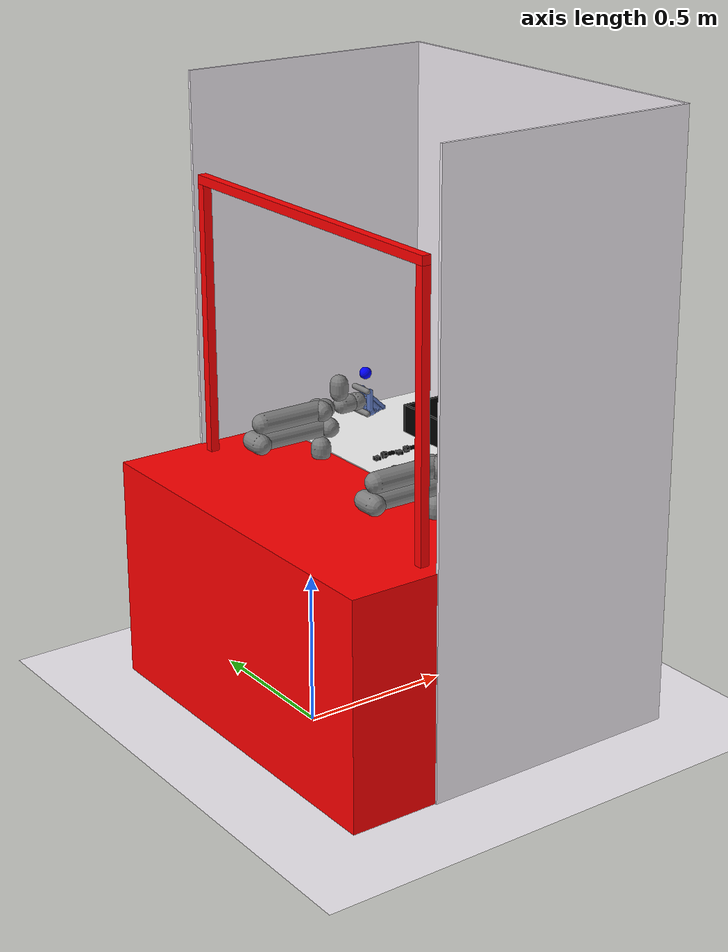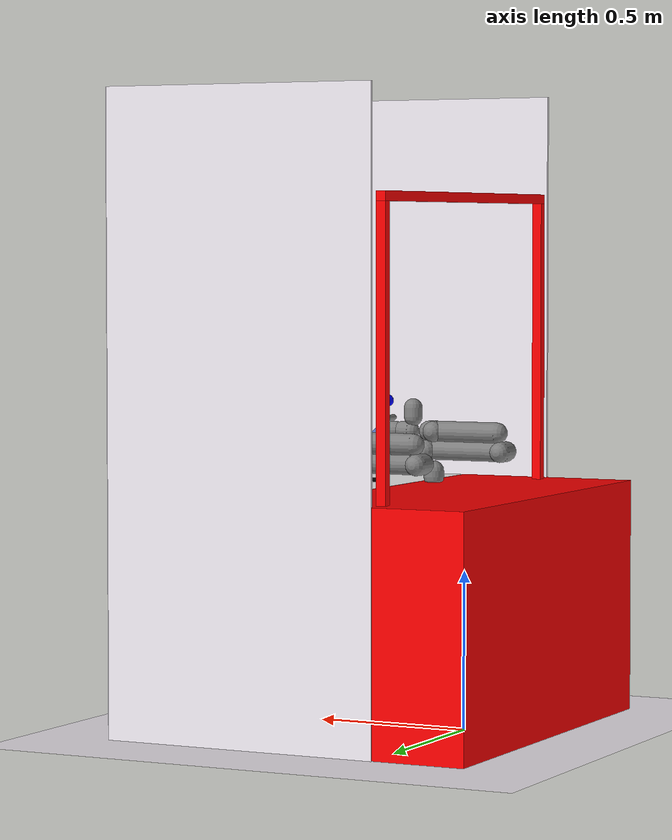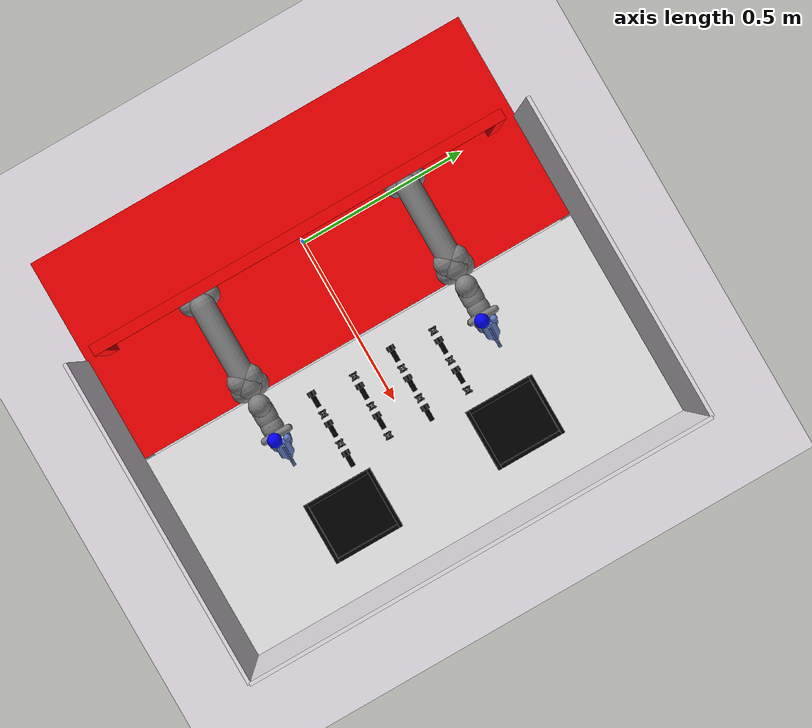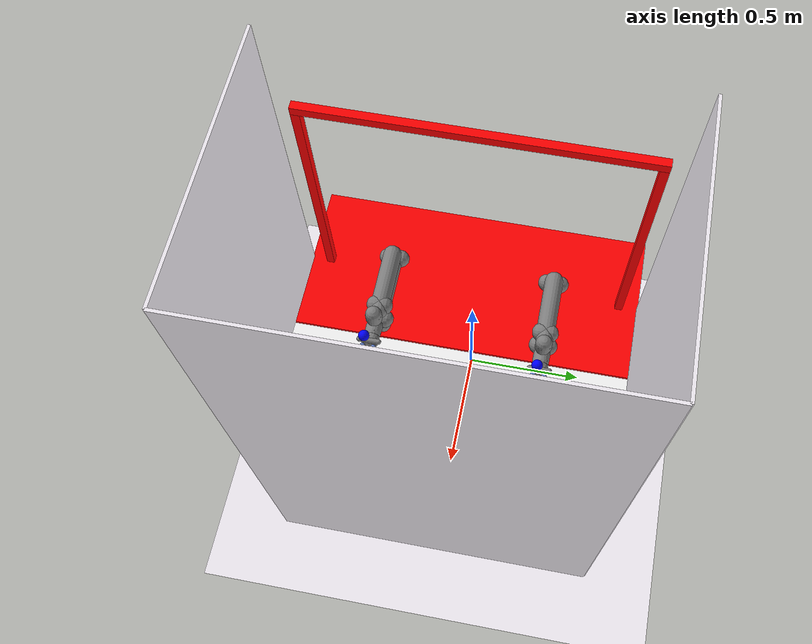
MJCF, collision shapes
<mujoco model="yam_nuts_bolts_sorting">
  <compiler angle="radian" meshdir="assets" boundmass="0.001" boundinertia="0.000001"/>

  <option integrator="implicitfast"/>

  <visual>
    <global azimuth="120" elevation="-20" offwidth="1920" offheight="1080"/>
    <quality shadowsize="8192" offsamples="16"/>
    <headlight ambient="0.40 0.40 0.40" diffuse="0.0 0.0 0.0" specular="0 0 0"/>
    <rgba haze="1.0 1.0 1.0 1"/>
  </visual>

  <default>
    <default class="yam">
      <position inheritrange="1"/>
      <joint frictionloss="0.1" axis="0 0 1"/>
      <default class="dm4340">
        <joint armature="0.032"/>
        <position kp="40" kv="2.5" forcerange="-28 28"/>
      </default>
      <default class="dm4310">
        <joint armature="0.0018"/>
        <position kp="10" kv="1" forcerange="-10 10"/>
      </default>
      <default class="visual">
        <geom type="mesh" contype="0" conaffinity="0" density="0" group="2" material="black"/>
      </default>
      <default class="collision">
        <geom group="3" type="capsule" friction="2.0 0.1 0.01" condim="6"/>
        <default class="sphere_collision">
          <geom size="0.0006 0 0" type="sphere" rgba="1 0 0 1" friction="4.0 0.1 0.01" condim="6" solimp="0.998 0.998 0.001" solref="0.004 1"/>
        </default>
      </default>
      <default class="finger">
        <joint type="slide" armature="0.1" frictionloss="0.1"/>
        <position ctrlrange="0.0 0.0495" kp="400" kv="14" inheritrange="0"/>
      </default>
    </default>
    <default class="sort_part">
      <joint type="free" damping="0.0015"/>
      <geom density="2500" condim="6" friction="1.15 0.02 0.002" solimp="0.995 0.998 0.001" solref="0.008 1"/>
      <default class="nut_collision">
        <geom friction="0.65 0.012 0.0012"/>
      </default>
      <default class="bolt_collision">
        <geom friction="1.35 0.025 0.0025"/>
      </default>
    </default>
  </default>

  <asset>
    <material name="black" rgba="0.30 0.30 0.30 1"/>
    <material name="white" rgba="0.9 0.9 0.9 1"/>
    <material name="nuts_bin_material" rgba="0.04 0.45 0.48 1" specular="0.18" shininess="0.22"/>
    <material name="bolts_bin_material" rgba="0.84 0.37 0.08 1" specular="0.18" shininess="0.22"/>
    <material name="sorting_bin_floor" rgba="0.18 0.19 0.20 1" specular="0.10" shininess="0.16"/>
    <material name="nut_steel" rgba="0.72 0.72 0.68 1" specular="0.55" shininess="0.35"/>
    <material name="bolt_steel" rgba="0.38 0.42 0.48 1" specular="0.48" shininess="0.32"/>
    <material name="bolt_head" rgba="0.25 0.28 0.32 1" specular="0.45" shininess="0.28"/>

    <mesh file="i2rt_yam/assets/model2.stl"/>
    <mesh file="i2rt_yam/assets/model2__2.stl"/>
    <mesh file="i2rt_yam/assets/model2__3.stl"/>
    <mesh file="i2rt_yam/assets/model2__4.stl"/>
    <mesh file="i2rt_yam/assets/model2__5.stl"/>
    <mesh file="i2rt_yam/assets/model2__6.stl"/>
    <mesh file="i2rt_yam/assets/model2__7.stl"/>
    <mesh file="i2rt_yam/assets/model2__8.stl"/>
    <mesh file="i2rt_yam/assets/model2__9.stl"/>
    <mesh file="i2rt_yam/assets/model2__10.stl"/>
    <mesh file="i2rt_yam/assets/model2__11.stl"/>
    <mesh file="i2rt_yam/assets/model2__12.stl"/>
    <mesh file="i2rt_yam/assets/model2__13.stl"/>
    <mesh file="i2rt_yam/assets/model2__14.stl"/>
    <mesh file="i2rt_yam/assets/model2__15.stl"/>
    <mesh file="i2rt_yam/assets/model2__16.stl"/>
    <mesh file="i2rt_yam/assets/model2__17.stl"/>
    <mesh name="base_visual_gate" file="i2rt_yam/assets/base_visual_gate.stl"/>
    <mesh name="camera_d405" file="i2rt_yam/assets/d405.stl"/>
    <mesh name="m20_nut_watertight" file="task_nuts_bolts/m20_nut_watertight.obj" scale="0.72 0.72 0.72"/>
    <mesh name="m20_bolt_watertight" file="task_nuts_bolts/m20_bolt_watertight.obj" scale="0.72 0.72 0.72"/>
    <mesh name="stackable_bin_visual" file="task_bins/stackable_box.obj" scale="0.170 0.195 0.095"/>
    <mesh name="low_poly_crate_bin_visual" file="task_bins/low_poly_plastic_crate.obj" scale="0.170 0.195 0.095"/>

    <texture type="skybox" builtin="gradient" rgb1="1.0 1.0 1.0" rgb2="0.98 0.98 0.98" width="512" height="3072"/>
    <texture type="2d" name="groundplane" builtin="checker" mark="edge"
      rgb1="0.55 0.55 0.55" rgb2="0.50 0.50 0.50" markrgb="0.6 0.6 0.6" width="300" height="300"/>
    <material name="groundplane" texture="groundplane" texuniform="true" texrepeat="5 5" reflectance="0.2"/>
  </asset>

  <worldbody>
    <!-- Lighting -->
    <light pos="0 0 1.5" dir="0 0 -1" directional="true"
      diffuse="0.30 0.30 0.30" specular="0.05 0.05 0.05"/>

    <!-- Floor -->
    <geom name="floor" size="0 0 0.05" type="plane" contype="0" conaffinity="0" rgba="0.95 0.93 0.96 1"/>
    <geom name="floor_collision" size="0 0 0.05" type="plane" group="3" rgba="0 0 0 0"/>

    <!-- Gate/station structure (visual) -->
    <geom type="mesh" contype="0" conaffinity="0" group="2" density="0" rgba="0.85 0.85 0.85 1" mesh="base_visual_gate"/>
    <geom size="0.2975 0.65 0.375" pos="0 0 0.375" type="box" group="3" rgba="1 0 0 0.0"/>

    <!-- Gate collision bodies + top camera -->
    <body name="gate_collision" pos="0 0 0.75">
      <geom size="0.015 0.015 0.45" pos="0 0.575 0.45" type="box" group="3" rgba="1 0 0 0.0"/>
      <geom size="0.015 0.015 0.45" pos="0 -0.575 0.45" type="box" group="3" rgba="1 0 0 0.0"/>
      <geom size="0.015 0.015 0.59" pos="0 0 0.915" quat="0.707107 0.707107 0 0" type="box" group="3" rgba="1 0 0 0.0"/>
      <body name="top_bar_center" pos="0 0 0.915">
        <body name="top_camera_d405" pos="0.08600512 -0.009 0.03932053" quat="0.183012 0.683013 0.683013 0.183012">
          <geom type="mesh" contype="0" conaffinity="0" group="2" density="0.001" mass="0.001"
            rgba="0 0 0 0" mesh="camera_d405"/>
          <body name="top_camera_frame" pos="0.009 0 0" quat="0 0 0 1">
            <camera name="top" pos="0 0 0" quat="0 1 0 0" fovy="58"/>
          </body>
        </body>
      </body>
    </body>

    <!-- Enclosure walls ( matching real white-walled workspace) -->
    <!-- Back wall: behind the table, spanning full Y width -->
    <geom name="back_wall" type="box" size="0.005 0.65 1.0" pos="0.9 0 1.0" group="2" contype="0" conaffinity="0" rgba="0.95 0.93 0.96 1"/>
    <geom name="back_wall_collision" type="box" size="0.005 0.65 1.0" pos="0.9 0 1.0" group="3" rgba="0 0 0 0"/>
    <!-- Left wall: at positive Y, from gate to back wall -->
    <geom name="left_wall" type="box" size="0.45 0.005 1.0" pos="0.45 0.65 1.0" group="2" contype="0" conaffinity="0" rgba="0.95 0.93 0.96 1"/>
    <geom name="left_wall_collision" type="box" size="0.45 0.005 1.0" pos="0.45 0.65 1.0" group="3" rgba="0 0 0 0"/>
    <!-- Right wall: at negative Y, from gate to back wall -->
    <geom name="right_wall" type="box" size="0.45 0.005 1.0" pos="0.45 -0.65 1.0" group="2" contype="0" conaffinity="0" rgba="0.95 0.93 0.96 1"/>
    <geom name="right_wall_collision" type="box" size="0.45 0.005 1.0" pos="0.45 -0.65 1.0" group="3" rgba="0 0 0 0"/>

    <!-- Play table (visual only + collision plane at surface) -->

    <!-- Side cameras on cage walls -->

    <!-- Overhead camera -->
    <body name="overhead_camera" pos="0.55 0.0 1.6">
      <camera name="overhead" pos="0 0 0" quat="0.707 0 0 -0.707" fovy="60"/>
    </body>

    <body name="left_side_camera" pos="0.5 0.55 1.05" euler="-1.3 0 3.14159">
      <camera name="left_side" pos="0 0 0" fovy="70"/>
    </body>
    <body name="right_side_camera" pos="0.5 -0.55 1.05" euler="1.3 0 0">
      <camera name="right_side" pos="0 0 0" fovy="70"/>
    </body>

    <body name="play_table">
      <geom size="0.2975 0.65 0.005" pos="0.6 0 0.745" type="box" group="2" contype="0" conaffinity="0" rgba="0.97 0.97 0.97 1"/>
    </body>
    <geom name="table_plane" type="plane" size="0.2975 0.65 0.01" pos="0.6 0 0.75" rgba="0 0 0 0" group="3"/>

    <!-- ==================== NUTS-AND-BOLTS SORTING TASK ==================== -->
    <body name="nuts_sorting_bin" pos="0.70 0.245 0.75">
      <inertial pos="0 0 0.044" mass="0.12" diaginertia="0.00055 0.00048 0.00082"/>
      <joint name="nuts_sorting_bin_joint" type="free" damping="0.01"/>
      <geom name="nuts_sorting_bin_visual" type="mesh" mesh="stackable_bin_visual" material="nuts_bin_material" group="2" contype="0" conaffinity="0" density="0"/>
      <geom name="nuts_bin_floor" type="box" size="0.082 0.095 0.006" pos="0 0 0.006" group="3" rgba="0 0 0 0" friction="1.4 0.1 0.01"/>
      <geom name="nuts_bin_back_wall" type="box" size="0.005 0.090 0.048" pos="0.082 0 0.048" group="3" rgba="0 0 0 0" friction="1.2 0.1 0.01"/>
      <geom name="nuts_bin_front_wall" type="box" size="0.005 0.090 0.048" pos="-0.082 0 0.048" group="3" rgba="0 0 0 0" friction="1.2 0.1 0.01"/>
      <geom name="nuts_bin_left_wall" type="box" size="0.087 0.005 0.048" pos="0 0.095 0.048" group="3" rgba="0 0 0 0" friction="1.2 0.1 0.01"/>
      <geom name="nuts_bin_right_wall" type="box" size="0.087 0.005 0.048" pos="0 -0.095 0.048" group="3" rgba="0 0 0 0" friction="1.2 0.1 0.01"/>
      <site name="nuts_bin_goal_region" type="box" size="0.068 0.080 0.042" pos="0 0 0.048" rgba="0.0 0.9 1.0 0.18" group="4"/>
    </body>
    <body name="bolts_sorting_bin" pos="0.70 -0.245 0.75">
      <inertial pos="0 0 0.044" mass="0.12" diaginertia="0.00055 0.00048 0.00082"/>
      <joint name="bolts_sorting_bin_joint" type="free" damping="0.01"/>
      <geom name="bolts_sorting_bin_visual" type="mesh" mesh="stackable_bin_visual" material="bolts_bin_material" group="2" contype="0" conaffinity="0" density="0"/>
      <geom name="bolts_bin_floor" type="box" size="0.082 0.095 0.006" pos="0 0 0.006" group="3" rgba="0 0 0 0" friction="1.4 0.1 0.01"/>
      <geom name="bolts_bin_back_wall" type="box" size="0.005 0.090 0.048" pos="0.082 0 0.048" group="3" rgba="0 0 0 0" friction="1.2 0.1 0.01"/>
      <geom name="bolts_bin_front_wall" type="box" size="0.005 0.090 0.048" pos="-0.082 0 0.048" group="3" rgba="0 0 0 0" friction="1.2 0.1 0.01"/>
      <geom name="bolts_bin_left_wall" type="box" size="0.087 0.005 0.048" pos="0 0.095 0.048" group="3" rgba="0 0 0 0" friction="1.2 0.1 0.01"/>
      <geom name="bolts_bin_right_wall" type="box" size="0.087 0.005 0.048" pos="0 -0.095 0.048" group="3" rgba="0 0 0 0" friction="1.2 0.1 0.01"/>
      <site name="bolts_bin_goal_region" type="box" size="0.068 0.080 0.042" pos="0 0 0.048" rgba="1.0 0.55 0.0 0.18" group="4"/>
    </body>

    <!-- NUTS_BOLTS_SORTING_OBJECTS_BEGIN -->
    <body name="nut_1" pos="0.385 0.18 0.75576">
      <inertial pos="0 0 0" mass="0.010" diaginertia="0.00000065 0.00000065 0.0000011"/>
      <joint name="nut_1_joint" class="sort_part"/>
      <geom name="nut_1_visual" type="mesh" mesh="m20_nut_watertight" material="nut_steel" contype="0" conaffinity="0" density="0" group="2"/>
      <geom class="nut_collision" type="box" size="0.0072 0.0027 0.00576" pos="0.00684 0 0" euler="0 0 1.5708" group="3" rgba="0 0 0 0"/>
      <geom class="nut_collision" type="box" size="0.0072 0.0027 0.00576" pos="-0.00684 0 0" euler="0 0 1.5708" group="3" rgba="0 0 0 0"/>
      <geom class="nut_collision" type="box" size="0.0072 0.0027 0.00576" pos="0.00342 0.00594 0" euler="0 0 0.5236" group="3" rgba="0 0 0 0"/>
      <geom class="nut_collision" type="box" size="0.0072 0.0027 0.00576" pos="-0.00342 0.00594 0" euler="0 0 -0.5236" group="3" rgba="0 0 0 0"/>
      <geom class="nut_collision" type="box" size="0.0072 0.0027 0.00576" pos="0.00342 -0.00594 0" euler="0 0 -0.5236" group="3" rgba="0 0 0 0"/>
      <geom class="nut_collision" type="box" size="0.0072 0.0027 0.00576" pos="-0.00342 -0.00594 0" euler="0 0 0.5236" group="3" rgba="0 0 0 0"/>
    </body>
    <body name="nut_2" pos="0.475 0.18 0.75576">
      <inertial pos="0 0 0" mass="0.010" diaginertia="0.00000065 0.00000065 0.0000011"/>
      <joint name="nut_2_joint" class="sort_part"/>
      <geom name="nut_2_visual" type="mesh" mesh="m20_nut_watertight" material="nut_steel" contype="0" conaffinity="0" density="0" group="2"/>
      <geom class="nut_collision" type="box" size="0.0072 0.0027 0.00576" pos="0.00684 0 0" euler="0 0 1.5708" group="3" rgba="0 0 0 0"/>
      <geom class="nut_collision" type="box" size="0.0072 0.0027 0.00576" pos="-0.00684 0 0" euler="0 0 1.5708" group="3" rgba="0 0 0 0"/>
      <geom class="nut_collision" type="box" size="0.0072 0.0027 0.00576" pos="0.00342 0.00594 0" euler="0 0 0.5236" group="3" rgba="0 0 0 0"/>
      <geom class="nut_collision" type="box" size="0.0072 0.0027 0.00576" pos="-0.00342 0.00594 0" euler="0 0 -0.5236" group="3" rgba="0 0 0 0"/>
      <geom class="nut_collision" type="box" size="0.0072 0.0027 0.00576" pos="0.00342 -0.00594 0" euler="0 0 -0.5236" group="3" rgba="0 0 0 0"/>
      <geom class="nut_collision" type="box" size="0.0072 0.0027 0.00576" pos="-0.00342 -0.00594 0" euler="0 0 0.5236" group="3" rgba="0 0 0 0"/>
    </body>
    <body name="nut_3" pos="0.565 0.18 0.75576">
      <inertial pos="0 0 0" mass="0.010" diaginertia="0.00000065 0.00000065 0.0000011"/>
      <joint name="nut_3_joint" class="sort_part"/>
      <geom name="nut_3_visual" type="mesh" mesh="m20_nut_watertight" material="nut_steel" contype="0" conaffinity="0" density="0" group="2"/>
      <geom class="nut_collision" type="box" size="0.0072 0.0027 0.00576" pos="0.00684 0 0" euler="0 0 1.5708" group="3" rgba="0 0 0 0"/>
      <geom class="nut_collision" type="box" size="0.0072 0.0027 0.00576" pos="-0.00684 0 0" euler="0 0 1.5708" group="3" rgba="0 0 0 0"/>
      <geom class="nut_collision" type="box" size="0.0072 0.0027 0.00576" pos="0.00342 0.00594 0" euler="0 0 0.5236" group="3" rgba="0 0 0 0"/>
      <geom class="nut_collision" type="box" size="0.0072 0.0027 0.00576" pos="-0.00342 0.00594 0" euler="0 0 -0.5236" group="3" rgba="0 0 0 0"/>
      <geom class="nut_collision" type="box" size="0.0072 0.0027 0.00576" pos="0.00342 -0.00594 0" euler="0 0 -0.5236" group="3" rgba="0 0 0 0"/>
      <geom class="nut_collision" type="box" size="0.0072 0.0027 0.00576" pos="-0.00342 -0.00594 0" euler="0 0 0.5236" group="3" rgba="0 0 0 0"/>
    </body>
    <body name="nut_4" pos="0.430 0.06 0.75576">
      <inertial pos="0 0 0" mass="0.010" diaginertia="0.00000065 0.00000065 0.0000011"/>
      <joint name="nut_4_joint" class="sort_part"/>
      <geom name="nut_4_visual" type="mesh" mesh="m20_nut_watertight" material="nut_steel" contype="0" conaffinity="0" density="0" group="2"/>
      <geom class="nut_collision" type="box" size="0.0072 0.0027 0.00576" pos="0.00684 0 0" euler="0 0 1.5708" group="3" rgba="0 0 0 0"/>
      <geom class="nut_collision" type="box" size="0.0072 0.0027 0.00576" pos="-0.00684 0 0" euler="0 0 1.5708" group="3" rgba="0 0 0 0"/>
      <geom class="nut_collision" type="box" size="0.0072 0.0027 0.00576" pos="0.00342 0.00594 0" euler="0 0 0.5236" group="3" rgba="0 0 0 0"/>
      <geom class="nut_collision" type="box" size="0.0072 0.0027 0.00576" pos="-0.00342 0.00594 0" euler="0 0 -0.5236" group="3" rgba="0 0 0 0"/>
      <geom class="nut_collision" type="box" size="0.0072 0.0027 0.00576" pos="0.00342 -0.00594 0" euler="0 0 -0.5236" group="3" rgba="0 0 0 0"/>
      <geom class="nut_collision" type="box" size="0.0072 0.0027 0.00576" pos="-0.00342 -0.00594 0" euler="0 0 0.5236" group="3" rgba="0 0 0 0"/>
    </body>
    <body name="nut_5" pos="0.520 0.06 0.75576">
      <inertial pos="0 0 0" mass="0.010" diaginertia="0.00000065 0.00000065 0.0000011"/>
      <joint name="nut_5_joint" class="sort_part"/>
      <geom name="nut_5_visual" type="mesh" mesh="m20_nut_watertight" material="nut_steel" contype="0" conaffinity="0" density="0" group="2"/>
      <geom class="nut_collision" type="box" size="0.0072 0.0027 0.00576" pos="0.00684 0 0" euler="0 0 1.5708" group="3" rgba="0 0 0 0"/>
      <geom class="nut_collision" type="box" size="0.0072 0.0027 0.00576" pos="-0.00684 0 0" euler="0 0 1.5708" group="3" rgba="0 0 0 0"/>
      <geom class="nut_collision" type="box" size="0.0072 0.0027 0.00576" pos="0.00342 0.00594 0" euler="0 0 0.5236" group="3" rgba="0 0 0 0"/>
      <geom class="nut_collision" type="box" size="0.0072 0.0027 0.00576" pos="-0.00342 0.00594 0" euler="0 0 -0.5236" group="3" rgba="0 0 0 0"/>
      <geom class="nut_collision" type="box" size="0.0072 0.0027 0.00576" pos="0.00342 -0.00594 0" euler="0 0 -0.5236" group="3" rgba="0 0 0 0"/>
      <geom class="nut_collision" type="box" size="0.0072 0.0027 0.00576" pos="-0.00342 -0.00594 0" euler="0 0 0.5236" group="3" rgba="0 0 0 0"/>
    </body>
    <body name="nut_6" pos="0.385 -0.06 0.75576">
      <inertial pos="0 0 0" mass="0.010" diaginertia="0.00000065 0.00000065 0.0000011"/>
      <joint name="nut_6_joint" class="sort_part"/>
      <geom name="nut_6_visual" type="mesh" mesh="m20_nut_watertight" material="nut_steel" contype="0" conaffinity="0" density="0" group="2"/>
      <geom class="nut_collision" type="box" size="0.0072 0.0027 0.00576" pos="0.00684 0 0" euler="0 0 1.5708" group="3" rgba="0 0 0 0"/>
      <geom class="nut_collision" type="box" size="0.0072 0.0027 0.00576" pos="-0.00684 0 0" euler="0 0 1.5708" group="3" rgba="0 0 0 0"/>
      <geom class="nut_collision" type="box" size="0.0072 0.0027 0.00576" pos="0.00342 0.00594 0" euler="0 0 0.5236" group="3" rgba="0 0 0 0"/>
      <geom class="nut_collision" type="box" size="0.0072 0.0027 0.00576" pos="-0.00342 0.00594 0" euler="0 0 -0.5236" group="3" rgba="0 0 0 0"/>
      <geom class="nut_collision" type="box" size="0.0072 0.0027 0.00576" pos="0.00342 -0.00594 0" euler="0 0 -0.5236" group="3" rgba="0 0 0 0"/>
      <geom class="nut_collision" type="box" size="0.0072 0.0027 0.00576" pos="-0.00342 -0.00594 0" euler="0 0 0.5236" group="3" rgba="0 0 0 0"/>
    </body>
    <body name="nut_7" pos="0.475 -0.06 0.75576">
      <inertial pos="0 0 0" mass="0.010" diaginertia="0.00000065 0.00000065 0.0000011"/>
      <joint name="nut_7_joint" class="sort_part"/>
      <geom name="nut_7_visual" type="mesh" mesh="m20_nut_watertight" material="nut_steel" contype="0" conaffinity="0" density="0" group="2"/>
      <geom class="nut_collision" type="box" size="0.0072 0.0027 0.00576" pos="0.00684 0 0" euler="0 0 1.5708" group="3" rgba="0 0 0 0"/>
      <geom class="nut_collision" type="box" size="0.0072 0.0027 0.00576" pos="-0.00684 0 0" euler="0 0 1.5708" group="3" rgba="0 0 0 0"/>
      <geom class="nut_collision" type="box" size="0.0072 0.0027 0.00576" pos="0.00342 0.00594 0" euler="0 0 0.5236" group="3" rgba="0 0 0 0"/>
      <geom class="nut_collision" type="box" size="0.0072 0.0027 0.00576" pos="-0.00342 0.00594 0" euler="0 0 -0.5236" group="3" rgba="0 0 0 0"/>
      <geom class="nut_collision" type="box" size="0.0072 0.0027 0.00576" pos="0.00342 -0.00594 0" euler="0 0 -0.5236" group="3" rgba="0 0 0 0"/>
      <geom class="nut_collision" type="box" size="0.0072 0.0027 0.00576" pos="-0.00342 -0.00594 0" euler="0 0 0.5236" group="3" rgba="0 0 0 0"/>
    </body>
    <body name="nut_8" pos="0.565 -0.06 0.75576">
      <inertial pos="0 0 0" mass="0.010" diaginertia="0.00000065 0.00000065 0.0000011"/>
      <joint name="nut_8_joint" class="sort_part"/>
      <geom name="nut_8_visual" type="mesh" mesh="m20_nut_watertight" material="nut_steel" contype="0" conaffinity="0" density="0" group="2"/>
      <geom class="nut_collision" type="box" size="0.0072 0.0027 0.00576" pos="0.00684 0 0" euler="0 0 1.5708" group="3" rgba="0 0 0 0"/>
      <geom class="nut_collision" type="box" size="0.0072 0.0027 0.00576" pos="-0.00684 0 0" euler="0 0 1.5708" group="3" rgba="0 0 0 0"/>
      <geom class="nut_collision" type="box" size="0.0072 0.0027 0.00576" pos="0.00342 0.00594 0" euler="0 0 0.5236" group="3" rgba="0 0 0 0"/>
      <geom class="nut_collision" type="box" size="0.0072 0.0027 0.00576" pos="-0.00342 0.00594 0" euler="0 0 -0.5236" group="3" rgba="0 0 0 0"/>
      <geom class="nut_collision" type="box" size="0.0072 0.0027 0.00576" pos="0.00342 -0.00594 0" euler="0 0 -0.5236" group="3" rgba="0 0 0 0"/>
      <geom class="nut_collision" type="box" size="0.0072 0.0027 0.00576" pos="-0.00342 -0.00594 0" euler="0 0 0.5236" group="3" rgba="0 0 0 0"/>
    </body>
    <body name="nut_9" pos="0.430 -0.18 0.75576">
      <inertial pos="0 0 0" mass="0.010" diaginertia="0.00000065 0.00000065 0.0000011"/>
      <joint name="nut_9_joint" class="sort_part"/>
      <geom name="nut_9_visual" type="mesh" mesh="m20_nut_watertight" material="nut_steel" contype="0" conaffinity="0" density="0" group="2"/>
      <geom class="nut_collision" type="box" size="0.0072 0.0027 0.00576" pos="0.00684 0 0" euler="0 0 1.5708" group="3" rgba="0 0 0 0"/>
      <geom class="nut_collision" type="box" size="0.0072 0.0027 0.00576" pos="-0.00684 0 0" euler="0 0 1.5708" group="3" rgba="0 0 0 0"/>
      <geom class="nut_collision" type="box" size="0.0072 0.0027 0.00576" pos="0.00342 0.00594 0" euler="0 0 0.5236" group="3" rgba="0 0 0 0"/>
      <geom class="nut_collision" type="box" size="0.0072 0.0027 0.00576" pos="-0.00342 0.00594 0" euler="0 0 -0.5236" group="3" rgba="0 0 0 0"/>
      <geom class="nut_collision" type="box" size="0.0072 0.0027 0.00576" pos="0.00342 -0.00594 0" euler="0 0 -0.5236" group="3" rgba="0 0 0 0"/>
      <geom class="nut_collision" type="box" size="0.0072 0.0027 0.00576" pos="-0.00342 -0.00594 0" euler="0 0 0.5236" group="3" rgba="0 0 0 0"/>
    </body>
    <body name="nut_10" pos="0.520 -0.18 0.75576">
      <inertial pos="0 0 0" mass="0.010" diaginertia="0.00000065 0.00000065 0.0000011"/>
      <joint name="nut_10_joint" class="sort_part"/>
      <geom name="nut_10_visual" type="mesh" mesh="m20_nut_watertight" material="nut_steel" contype="0" conaffinity="0" density="0" group="2"/>
      <geom class="nut_collision" type="box" size="0.0072 0.0027 0.00576" pos="0.00684 0 0" euler="0 0 1.5708" group="3" rgba="0 0 0 0"/>
      <geom class="nut_collision" type="box" size="0.0072 0.0027 0.00576" pos="-0.00684 0 0" euler="0 0 1.5708" group="3" rgba="0 0 0 0"/>
      <geom class="nut_collision" type="box" size="0.0072 0.0027 0.00576" pos="0.00342 0.00594 0" euler="0 0 0.5236" group="3" rgba="0 0 0 0"/>
      <geom class="nut_collision" type="box" size="0.0072 0.0027 0.00576" pos="-0.00342 0.00594 0" euler="0 0 -0.5236" group="3" rgba="0 0 0 0"/>
      <geom class="nut_collision" type="box" size="0.0072 0.0027 0.00576" pos="0.00342 -0.00594 0" euler="0 0 -0.5236" group="3" rgba="0 0 0 0"/>
      <geom class="nut_collision" type="box" size="0.0072 0.0027 0.00576" pos="-0.00342 -0.00594 0" euler="0 0 0.5236" group="3" rgba="0 0 0 0"/>
    </body>
    <body name="bolt_1" pos="0.430 0.18 0.7608" quat="0.707107 0 0.707107 0">
      <inertial pos="0 0 -0.0047" mass="0.033" diaginertia="0.0000065 0.0000065 0.0000016"/>
      <joint name="bolt_1_joint" class="sort_part"/>
      <geom name="bolt_1_visual" type="mesh" mesh="m20_bolt_watertight" material="bolt_steel" contype="0" conaffinity="0" density="0" group="2"/>
      <geom class="bolt_collision" type="cylinder" size="0.00684 0.0162" pos="0 0 0.0072" group="3" rgba="0 0 0 0"/>
      <geom class="bolt_collision" type="box" size="0.0108 0.00414 0.0072" pos="0 0 -0.0162" euler="0 0 0" group="3" rgba="0 0 0 0"/>
      <geom class="bolt_collision" type="box" size="0.0108 0.00414 0.0072" pos="0 0 -0.0162" euler="0 0 1.0472" group="3" rgba="0 0 0 0"/>
      <geom class="bolt_collision" type="box" size="0.0108 0.00414 0.0072" pos="0 0 -0.0162" euler="0 0 2.0944" group="3" rgba="0 0 0 0"/>
    </body>
    <body name="bolt_2" pos="0.520 0.18 0.7608" quat="0.707107 0 0.707107 0">
      <inertial pos="0 0 -0.0047" mass="0.033" diaginertia="0.0000065 0.0000065 0.0000016"/>
      <joint name="bolt_2_joint" class="sort_part"/>
      <geom name="bolt_2_visual" type="mesh" mesh="m20_bolt_watertight" material="bolt_steel" contype="0" conaffinity="0" density="0" group="2"/>
      <geom class="bolt_collision" type="cylinder" size="0.00684 0.0162" pos="0 0 0.0072" group="3" rgba="0 0 0 0"/>
      <geom class="bolt_collision" type="box" size="0.0108 0.00414 0.0072" pos="0 0 -0.0162" euler="0 0 0" group="3" rgba="0 0 0 0"/>
      <geom class="bolt_collision" type="box" size="0.0108 0.00414 0.0072" pos="0 0 -0.0162" euler="0 0 1.0472" group="3" rgba="0 0 0 0"/>
      <geom class="bolt_collision" type="box" size="0.0108 0.00414 0.0072" pos="0 0 -0.0162" euler="0 0 2.0944" group="3" rgba="0 0 0 0"/>
    </body>
    <body name="bolt_3" pos="0.385 0.06 0.7608" quat="0.707107 0 0.707107 0">
      <inertial pos="0 0 -0.0047" mass="0.033" diaginertia="0.0000065 0.0000065 0.0000016"/>
      <joint name="bolt_3_joint" class="sort_part"/>
      <geom name="bolt_3_visual" type="mesh" mesh="m20_bolt_watertight" material="bolt_steel" contype="0" conaffinity="0" density="0" group="2"/>
      <geom class="bolt_collision" type="cylinder" size="0.00684 0.0162" pos="0 0 0.0072" group="3" rgba="0 0 0 0"/>
      <geom class="bolt_collision" type="box" size="0.0108 0.00414 0.0072" pos="0 0 -0.0162" euler="0 0 0" group="3" rgba="0 0 0 0"/>
      <geom class="bolt_collision" type="box" size="0.0108 0.00414 0.0072" pos="0 0 -0.0162" euler="0 0 1.0472" group="3" rgba="0 0 0 0"/>
      <geom class="bolt_collision" type="box" size="0.0108 0.00414 0.0072" pos="0 0 -0.0162" euler="0 0 2.0944" group="3" rgba="0 0 0 0"/>
    </body>
    <body name="bolt_4" pos="0.475 0.06 0.7608" quat="0.707107 0 0.707107 0">
      <inertial pos="0 0 -0.0047" mass="0.033" diaginertia="0.0000065 0.0000065 0.0000016"/>
      <joint name="bolt_4_joint" class="sort_part"/>
      <geom name="bolt_4_visual" type="mesh" mesh="m20_bolt_watertight" material="bolt_steel" contype="0" conaffinity="0" density="0" group="2"/>
      <geom class="bolt_collision" type="cylinder" size="0.00684 0.0162" pos="0 0 0.0072" group="3" rgba="0 0 0 0"/>
      <geom class="bolt_collision" type="box" size="0.0108 0.00414 0.0072" pos="0 0 -0.0162" euler="0 0 0" group="3" rgba="0 0 0 0"/>
      <geom class="bolt_collision" type="box" size="0.0108 0.00414 0.0072" pos="0 0 -0.0162" euler="0 0 1.0472" group="3" rgba="0 0 0 0"/>
      <geom class="bolt_collision" type="box" size="0.0108 0.00414 0.0072" pos="0 0 -0.0162" euler="0 0 2.0944" group="3" rgba="0 0 0 0"/>
    </body>
    <body name="bolt_5" pos="0.565 0.06 0.7608" quat="0.707107 0 0.707107 0">
      <inertial pos="0 0 -0.0047" mass="0.033" diaginertia="0.0000065 0.0000065 0.0000016"/>
      <joint name="bolt_5_joint" class="sort_part"/>
      <geom name="bolt_5_visual" type="mesh" mesh="m20_bolt_watertight" material="bolt_steel" contype="0" conaffinity="0" density="0" group="2"/>
      <geom class="bolt_collision" type="cylinder" size="0.00684 0.0162" pos="0 0 0.0072" group="3" rgba="0 0 0 0"/>
      <geom class="bolt_collision" type="box" size="0.0108 0.00414 0.0072" pos="0 0 -0.0162" euler="0 0 0" group="3" rgba="0 0 0 0"/>
      <geom class="bolt_collision" type="box" size="0.0108 0.00414 0.0072" pos="0 0 -0.0162" euler="0 0 1.0472" group="3" rgba="0 0 0 0"/>
      <geom class="bolt_collision" type="box" size="0.0108 0.00414 0.0072" pos="0 0 -0.0162" euler="0 0 2.0944" group="3" rgba="0 0 0 0"/>
    </body>
    <body name="bolt_6" pos="0.430 -0.06 0.7608" quat="0.707107 0 0.707107 0">
      <inertial pos="0 0 -0.0047" mass="0.033" diaginertia="0.0000065 0.0000065 0.0000016"/>
      <joint name="bolt_6_joint" class="sort_part"/>
      <geom name="bolt_6_visual" type="mesh" mesh="m20_bolt_watertight" material="bolt_steel" contype="0" conaffinity="0" density="0" group="2"/>
      <geom class="bolt_collision" type="cylinder" size="0.00684 0.0162" pos="0 0 0.0072" group="3" rgba="0 0 0 0"/>
      <geom class="bolt_collision" type="box" size="0.0108 0.00414 0.0072" pos="0 0 -0.0162" euler="0 0 0" group="3" rgba="0 0 0 0"/>
      <geom class="bolt_collision" type="box" size="0.0108 0.00414 0.0072" pos="0 0 -0.0162" euler="0 0 1.0472" group="3" rgba="0 0 0 0"/>
      <geom class="bolt_collision" type="box" size="0.0108 0.00414 0.0072" pos="0 0 -0.0162" euler="0 0 2.0944" group="3" rgba="0 0 0 0"/>
    </body>
    <body name="bolt_7" pos="0.520 -0.06 0.7608" quat="0.707107 0 0.707107 0">
      <inertial pos="0 0 -0.0047" mass="0.033" diaginertia="0.0000065 0.0000065 0.0000016"/>
      <joint name="bolt_7_joint" class="sort_part"/>
      <geom name="bolt_7_visual" type="mesh" mesh="m20_bolt_watertight" material="bolt_steel" contype="0" conaffinity="0" density="0" group="2"/>
      <geom class="bolt_collision" type="cylinder" size="0.00684 0.0162" pos="0 0 0.0072" group="3" rgba="0 0 0 0"/>
      <geom class="bolt_collision" type="box" size="0.0108 0.00414 0.0072" pos="0 0 -0.0162" euler="0 0 0" group="3" rgba="0 0 0 0"/>
      <geom class="bolt_collision" type="box" size="0.0108 0.00414 0.0072" pos="0 0 -0.0162" euler="0 0 1.0472" group="3" rgba="0 0 0 0"/>
      <geom class="bolt_collision" type="box" size="0.0108 0.00414 0.0072" pos="0 0 -0.0162" euler="0 0 2.0944" group="3" rgba="0 0 0 0"/>
    </body>
    <body name="bolt_8" pos="0.385 -0.18 0.7608" quat="0.707107 0 0.707107 0">
      <inertial pos="0 0 -0.0047" mass="0.033" diaginertia="0.0000065 0.0000065 0.0000016"/>
      <joint name="bolt_8_joint" class="sort_part"/>
      <geom name="bolt_8_visual" type="mesh" mesh="m20_bolt_watertight" material="bolt_steel" contype="0" conaffinity="0" density="0" group="2"/>
      <geom class="bolt_collision" type="cylinder" size="0.00684 0.0162" pos="0 0 0.0072" group="3" rgba="0 0 0 0"/>
      <geom class="bolt_collision" type="box" size="0.0108 0.00414 0.0072" pos="0 0 -0.0162" euler="0 0 0" group="3" rgba="0 0 0 0"/>
      <geom class="bolt_collision" type="box" size="0.0108 0.00414 0.0072" pos="0 0 -0.0162" euler="0 0 1.0472" group="3" rgba="0 0 0 0"/>
      <geom class="bolt_collision" type="box" size="0.0108 0.00414 0.0072" pos="0 0 -0.0162" euler="0 0 2.0944" group="3" rgba="0 0 0 0"/>
    </body>
    <body name="bolt_9" pos="0.475 -0.18 0.7608" quat="0.707107 0 0.707107 0">
      <inertial pos="0 0 -0.0047" mass="0.033" diaginertia="0.0000065 0.0000065 0.0000016"/>
      <joint name="bolt_9_joint" class="sort_part"/>
      <geom name="bolt_9_visual" type="mesh" mesh="m20_bolt_watertight" material="bolt_steel" contype="0" conaffinity="0" density="0" group="2"/>
      <geom class="bolt_collision" type="cylinder" size="0.00684 0.0162" pos="0 0 0.0072" group="3" rgba="0 0 0 0"/>
      <geom class="bolt_collision" type="box" size="0.0108 0.00414 0.0072" pos="0 0 -0.0162" euler="0 0 0" group="3" rgba="0 0 0 0"/>
      <geom class="bolt_collision" type="box" size="0.0108 0.00414 0.0072" pos="0 0 -0.0162" euler="0 0 1.0472" group="3" rgba="0 0 0 0"/>
      <geom class="bolt_collision" type="box" size="0.0108 0.00414 0.0072" pos="0 0 -0.0162" euler="0 0 2.0944" group="3" rgba="0 0 0 0"/>
    </body>
    <body name="bolt_10" pos="0.565 -0.18 0.7608" quat="0.707107 0 0.707107 0">
      <inertial pos="0 0 -0.0047" mass="0.033" diaginertia="0.0000065 0.0000065 0.0000016"/>
      <joint name="bolt_10_joint" class="sort_part"/>
      <geom name="bolt_10_visual" type="mesh" mesh="m20_bolt_watertight" material="bolt_steel" contype="0" conaffinity="0" density="0" group="2"/>
      <geom class="bolt_collision" type="cylinder" size="0.00684 0.0162" pos="0 0 0.0072" group="3" rgba="0 0 0 0"/>
      <geom class="bolt_collision" type="box" size="0.0108 0.00414 0.0072" pos="0 0 -0.0162" euler="0 0 0" group="3" rgba="0 0 0 0"/>
      <geom class="bolt_collision" type="box" size="0.0108 0.00414 0.0072" pos="0 0 -0.0162" euler="0 0 1.0472" group="3" rgba="0 0 0 0"/>
      <geom class="bolt_collision" type="box" size="0.0108 0.00414 0.0072" pos="0 0 -0.0162" euler="0 0 2.0944" group="3" rgba="0 0 0 0"/>
    </body>
    <!-- NUTS_BOLTS_SORTING_OBJECTS_END -->

    <!-- ==================== LEFT ARM ==================== -->
    <body name="left_arm" pos="0.2525 0.31 0.75" childclass="yam">
      <geom class="visual" pos="0 0 -0.0006" quat="1 0 0 1" mesh="model2"/>
      <geom class="collision" size="0.033 0.01" pos="0.0 0.0 0.026" quat="1 0 0 0"/>
      <body name="left_link_1" pos="0 0 0.0631" quat="1 0 0 1">
        <inertial pos="-0.00192861 -0.00795735 0.0208176" quat="0.297851 0.642634 0.360045 0.607185" mass="0.12415"
          diaginertia="0.000180751 0.000145532 5.89179e-05"/>
        <joint name="left_joint1" range="-2.61799 3.05433" class="dm4340"/>
        <geom class="visual" pos="5.26159e-07 2.34355e-07 -0.0632" quat="1 0 0 0" mesh="model2__2"/>
        <body name="left_link_2" pos="2.5e-05 -0.02 0.0409" quat="1 1 1 1" gravcomp="1">
          <inertial pos="0.132008 2.10599e-06 0.000293073" quat="1 1 1 1" mass="1.24434"
            diaginertia="0.0121902 0.0121318 0.000683304"/>
          <joint name="left_joint2" range="0 3.66519" class="dm4340"/>
          <geom class="visual" pos="0.0199992 -0.1041 -2.44738e-05" quat="1 -1 -1 -1" mesh="model2__3"/>
          <geom class="visual" pos="0.0199992 -0.1041 -2.44738e-05" quat="1 -1 -1 -1" mesh="model2__4"/>
          <geom class="visual" pos="0.0199992 -0.1041 -2.44738e-05" quat="1 -1 -1 -1" mesh="model2__5" material="white"/>
          <geom class="collision" size="0.032 0.11" pos="0.13 0 0" quat="1 0 1 0"/>
          <geom class="collision" size="0.033 0.02" pos="0 0.0 0" quat="1 0 0 0"/>
          <geom class="collision" size="0.033 0.025" pos="0.265 0 0" quat="1 0 0 0"/>
          <body name="left_link_3" pos="0.264 0 0" quat="0 1 0 0" gravcomp="1">
            <inertial pos="-0.121816 -0.054846 -0.000111108" quat="1 1 1 1" mass="0.853698"
              diaginertia="0.00699732 0.00696112 0.000788244"/>
            <joint name="left_joint3" range="0 3.66519" class="dm4340"/>
            <geom class="visual" pos="-0.244001 0.104101 2.44738e-05" quat="1 1 1 -1" mesh="model2__6"/>
            <geom class="visual" pos="-0.244001 0.104101 2.44738e-05" quat="1 1 1 -1" mesh="model2__7"/>
            <geom class="visual" pos="-0.244001 0.104101 2.44738e-05" quat="1 1 1 -1" mesh="model2__8" material="white"/>
            <geom class="visual" pos="-0.244001 0.104101 2.44738e-05" quat="1 1 1 -1" mesh="model2__9"/>
            <geom class="collision" size="0.034 0.12" pos="-0.14 -0.06 0.0" quat="1 0 1 0"/>
            <geom class="collision" size="0.034 0.015" pos="-0.24 -0.06 0.0" quat="1 0 0 0"/>
            <body name="left_link_4" pos="-0.245 -0.06 0" quat="1 0 0 0" gravcomp="1">
              <inertial pos="-0.0769778 -0.0527104 0.000154878" quat="0.667 0.667 -0.236 -0.236" mass="0.463511"
                diaginertia="0.000791532 0.000744733 0.000282116"/>
              <joint name="left_joint4" range="-1.5708 1.5708" class="dm4310"/>
              <geom class="visual" pos="0.00100023 0.164101 2.44738e-05" quat="1 1 1 -1" mesh="model2__10"/>
              <geom class="collision" size="0.03 0.015" pos="-0.073 -0.06 0.0" quat="1 1 0 0"/>
              <body name="left_link_5" pos="-0.074 -0.0395 2.5e-05" quat="1 -1 1 1" gravcomp="1">
                <inertial pos="3.64861e-05 0.00025665 0.0353526" quat="1 0 0 0" mass="0.350962"
                  diaginertia="0.000197802 0.0001775 0.000147402"/>
                <joint name="left_joint5" range="-1.5708 1.5708" class="dm4310"/>
                <geom class="visual" pos="0 -0.0749971 0.203601" quat="1.32679e-06 1 0 0" mesh="model2__11"/>
                <geom class="collision" size="0.030 0.015" pos="0 0.025 0.0395" quat="1 1 0 0"/>
                <body name="left_link_6" pos="0 0.0353 0.0395" quat="1 -1 0 0" gravcomp="1">
                  <inertial pos="-0.000217767 7.37059e-05 0.0270545" quat="1 1 0 0" mass="0.367476"
                    diaginertia="0.000265958 0.000242686 0.000227409"/>
                  <joint name="left_joint6" range="-2.0944 2.0944" class="dm4310"/>
                  <geom class="visual" pos="0 -0.164101 -0.110597" quat="1 -1 0 0" mesh="model2__12"/>
                  <geom class="visual" pos="0 -0.164101 -0.110597" quat="1 -1 0 0" mesh="model2__13"/>
                  <geom class="collision" size="0.01 0.035" pos="0 0.039 0.052" quat="1 0 1 0"/>
                  <geom class="collision" size="0.030 0.005" pos="0 0.0 0.03" quat="1 0 0 1"/>
                  <geom class="collision" size="0.01 0.035" pos="0 -0.039 0.052" quat="1 0 1 0"/>
                  <site name="left_tcp_site" pos="0 0 0" quat="1 0 0 -1" size="0.005" rgba="1 0 0 1" group="4"/>
                  <site name="left_grasp_site" pos="0 0 0.1347" quat="1 0 0 -1" size="0.005" rgba="0 1 0 1" group="4"/>
                  <!-- Wrist-mounted left camera (D405) — tilt 50° to match real D405 mounting -->
                  <body name="left_camera_d405" pos="-0.0107 0.095 0.062" quat="0.906 0.423 0 0">
                    <geom type="mesh" contype="0" conaffinity="0" group="3" density="0.001" mass="0.001"
                      rgba="0 0 0 0" mesh="camera_d405"/>
                    <geom name="left_cam_col" type="sphere" size="0.02" pos="0 0 0"
                      group="3" rgba="0 0 1 0.0" mass="0.001"/>
                    <body name="left_camera_frame" pos="0.009 0 0" quat="0 0 0 1">
                      <camera name="left" pos="0 0 0" quat="0 1 0 0" fovy="58"/>
                    </body>
                  </body>
                  <body name="left_link_left_finger" pos="-0.037 0.0392 0.0605" quat="1 0 1 0" gravcomp="1">
                    <inertial pos="-0.0192995 -0.0365902 0.039774" quat="0.757351 0.568898 -0.3199 0.0" mass="0.118"
                      diaginertia="0.000159084 0.000154909 4.63655e-05"/>
                    <joint class="finger" name="left_left_finger" range="-0.00205 0.0475"/>
                    <geom class="visual" pos="0.171097 -0.203301 0.037" quat="1 -1 -1 -1" mesh="model2__14"/>
                    <geom class="visual" pos="0.171097 -0.203301 0.037" quat="1 -1 -1 -1" mesh="model2__15"/>
                    <body name="left_lf_rot" quat="1 -1 -1 1" pos="0.0 -0.0392 0.037" gravcomp="1">
                      <geom class="collision" size="0.01 0.03" pos="0.0 -0.02 0.012" quat="1 0 1 0"
                        rgba="0.381493 0.492734 0.780446 1"/>
                      <geom class="collision" size="0.01 0.02" pos="-0.02 -0.01 0.032" quat="1 0 2.5 0"
                        rgba="0.381493 0.492734 0.780446 1"/>
                      <body name="left_lf_down" quat="1 0 0 0" pos="-0.044 0.0 0.0" gravcomp="1">
                        <geom class="collision" size="0.01 0.01" pos="0.0 -0.020 0.012" quat="1 -0.1 0 0"
                          rgba="0.381493 0.492734 0.780446 1"/>
                        <geom class="collision" size="0.003 0.022" pos="0.005 -0.014 0.04" quat="1 -0.2 0 0"
                          rgba="0.381493 0.492734 0.780446 1"/>
                        <geom class="collision" size="0.003 0.022" pos="-0.005 -0.014 0.04" quat="1 -0.2 0 0"
                          rgba="0.381493 0.492734 0.780446 1"/>
                        <geom class="collision" type="box" size="0.006 0.002 0.04" friction="4.0 0.1 0.01" pos="0 -0.0024 0.046" quat="1 0 0 0"
                          rgba="0.381493 0.492734 0.780446 1"/>
                        <geom class="collision" type="box" size="0.006 0.002 0.039" friction="4.0 0.1 0.01" pos="0.027 -0.0024 0.053"
                          quat="1 0 2.5 0" rgba="0.381493 0.492734 0.780446 1"/>
                        <geom class="sphere_collision" pos="0.003  -0.0004 0.078"/>
                        <geom class="sphere_collision" pos="-0.003 -0.0004 0.078"/>
                        <geom class="sphere_collision" pos="0.003  -0.0004 0.07"/>
                        <geom class="sphere_collision" pos="-0.003 -0.0004 0.07"/>
                        <geom class="sphere_collision" pos="0.003  -0.0004 0.06"/>
                        <geom class="sphere_collision" pos="-0.003 -0.0004 0.06"/>
                      </body>
                    </body>
                  </body>
                  <body name="left_link_right_finger" pos="0.037 -0.0392 0.0605" quat="1 0 1 0" gravcomp="1">
                    <inertial pos="-0.0192995 0.0365902 -0.039774" quat="-0.757351 0.568898 -0.3199 0" mass="0.118"
                      diaginertia="0.000159084 0.000154909 4.63655e-05"/>
                    <joint class="finger" name="left_right_finger" range="-0.0475 0.00205"/>
                    <geom class="visual" pos="0.171097 -0.124901 -0.037" quat="1 -1 -1 -1" mesh="model2__16"/>
                    <geom class="visual" pos="0.171097 -0.124901 -0.037" quat="1 -1 -1 -1" mesh="model2__17"/>
                    <body name="left_rf_rot" quat="1 1 -1 -1" pos="0.0 0.0392 -0.037" gravcomp="1">
                      <geom class="collision" size="0.01 0.03" pos="0.0 -0.02 0.012" quat="1 0 1 0"
                        rgba="0.381493 0.492734 0.780446 1"/>
                      <geom class="collision" size="0.01 0.02" pos="0.02 -0.01 0.032" quat="1 0 -2.5 0"
                        rgba="0.381493 0.492734 0.780446 1"/>
                      <body name="left_rf_down" quat="1 0 0 0" pos="0.044 0.0 0.0" gravcomp="1">
                        <geom class="collision" size="0.01 0.01" pos="0.0 -0.020 0.012" quat="1 -0.1 0 0"
                          rgba="0.381493 0.492734 0.780446 1"/>
                        <geom class="collision" size="0.003 0.022" pos="0.005 -0.014 0.04" quat="1 -0.2 0 0"
                          rgba="0.381493 0.492734 0.780446 1"/>
                        <geom class="collision" size="0.003 0.022" pos="-0.005 -0.014 0.04" quat="1 -0.2 0 0"
                          rgba="0.381493 0.492734 0.780446 1"/>
                        <geom class="collision" type="box" size="0.006 0.002 0.04" friction="4.0 0.1 0.01" pos="0 -0.0024 0.046" quat="1 0 0 0"
                          rgba="0.381493 0.492734 0.780446 1"/>
                        <geom class="collision" type="box" size="0.006 0.002 0.039" friction="4.0 0.1 0.01" pos="-0.027 -0.0024 0.053"
                          quat="1 0 -2.5 0" rgba="0.381493 0.492734 0.780446 1"/>
                        <geom class="sphere_collision" pos="0.003  -0.0004 0.078"/>
                        <geom class="sphere_collision" pos="-0.003 -0.0004 0.078"/>
                        <geom class="sphere_collision" pos="0.003  -0.0004 0.07"/>
                        <geom class="sphere_collision" pos="-0.003 -0.0004 0.07"/>
                        <geom class="sphere_collision" pos="0.003  -0.0004 0.06"/>
                        <geom class="sphere_collision" pos="-0.003 -0.0004 0.06"/>
                      </body>
                    </body>
                  </body>
                </body>
              </body>
            </body>
          </body>
        </body>
      </body>
    </body>

    <!-- ==================== RIGHT ARM ==================== -->
    <body name="right_arm" pos="0.2525 -0.31 0.75" childclass="yam">
      <geom class="visual" pos="0 0 -0.0006" quat="1 0 0 1" mesh="model2"/>
      <geom class="collision" size="0.033 0.01" pos="0.0 0.0 0.026" quat="1 0 0 0"/>
      <body name="right_link_1" pos="0 0 0.0631" quat="1 0 0 1">
        <inertial pos="-0.00192861 -0.00795735 0.0208176" quat="0.297851 0.642634 0.360045 0.607185" mass="0.12415"
          diaginertia="0.000180751 0.000145532 5.89179e-05"/>
        <joint name="right_joint1" range="-2.61799 3.05433" class="dm4340"/>
        <geom class="visual" pos="5.26159e-07 2.34355e-07 -0.0632" quat="1 0 0 0" mesh="model2__2"/>
        <body name="right_link_2" pos="2.5e-05 -0.02 0.0409" quat="1 1 1 1" gravcomp="1">
          <inertial pos="0.132008 2.10599e-06 0.000293073" quat="1 1 1 1" mass="1.24434"
            diaginertia="0.0121902 0.0121318 0.000683304"/>
          <joint name="right_joint2" range="0 3.66519" class="dm4340"/>
          <geom class="visual" pos="0.0199992 -0.1041 -2.44738e-05" quat="1 -1 -1 -1" mesh="model2__3"/>
          <geom class="visual" pos="0.0199992 -0.1041 -2.44738e-05" quat="1 -1 -1 -1" mesh="model2__4"/>
          <geom class="visual" pos="0.0199992 -0.1041 -2.44738e-05" quat="1 -1 -1 -1" mesh="model2__5" material="white"/>
          <geom class="collision" size="0.032 0.11" pos="0.13 0 0" quat="1 0 1 0"/>
          <geom class="collision" size="0.033 0.02" pos="0 0.0 0" quat="1 0 0 0"/>
          <geom class="collision" size="0.033 0.025" pos="0.265 0 0" quat="1 0 0 0"/>
          <body name="right_link_3" pos="0.264 0 0" quat="0 1 0 0" gravcomp="1">
            <inertial pos="-0.121816 -0.054846 -0.000111108" quat="1 1 1 1" mass="0.853698"
              diaginertia="0.00699732 0.00696112 0.000788244"/>
            <joint name="right_joint3" range="0 3.66519" class="dm4340"/>
            <geom class="visual" pos="-0.244001 0.104101 2.44738e-05" quat="1 1 1 -1" mesh="model2__6"/>
            <geom class="visual" pos="-0.244001 0.104101 2.44738e-05" quat="1 1 1 -1" mesh="model2__7"/>
            <geom class="visual" pos="-0.244001 0.104101 2.44738e-05" quat="1 1 1 -1" mesh="model2__8" material="white"/>
            <geom class="visual" pos="-0.244001 0.104101 2.44738e-05" quat="1 1 1 -1" mesh="model2__9"/>
            <geom class="collision" size="0.034 0.12" pos="-0.14 -0.06 0.0" quat="1 0 1 0"/>
            <geom class="collision" size="0.034 0.015" pos="-0.24 -0.06 0.0" quat="1 0 0 0"/>
            <body name="right_link_4" pos="-0.245 -0.06 0" quat="1 0 0 0" gravcomp="1">
              <inertial pos="-0.0769778 -0.0527104 0.000154878" quat="0.667 0.667 -0.236 -0.236" mass="0.463511"
                diaginertia="0.000791532 0.000744733 0.000282116"/>
              <joint name="right_joint4" range="-1.5708 1.5708" class="dm4310"/>
              <geom class="visual" pos="0.00100023 0.164101 2.44738e-05" quat="1 1 1 -1" mesh="model2__10"/>
              <geom class="collision" size="0.03 0.015" pos="-0.073 -0.06 0.0" quat="1 1 0 0"/>
              <body name="right_link_5" pos="-0.074 -0.0395 2.5e-05" quat="1 -1 1 1" gravcomp="1">
                <inertial pos="3.64861e-05 0.00025665 0.0353526" quat="1 0 0 0" mass="0.350962"
                  diaginertia="0.000197802 0.0001775 0.000147402"/>
                <joint name="right_joint5" range="-1.5708 1.5708" class="dm4310"/>
                <geom class="visual" pos="0 -0.0749971 0.203601" quat="1.32679e-06 1 0 0" mesh="model2__11"/>
                <geom class="collision" size="0.030 0.015" pos="0 0.025 0.0395" quat="1 1 0 0"/>
                <body name="right_link_6" pos="0 0.0353 0.0395" quat="1 -1 0 0" gravcomp="1">
                  <inertial pos="-0.000217767 7.37059e-05 0.0270545" quat="1 1 0 0" mass="0.367476"
                    diaginertia="0.000265958 0.000242686 0.000227409"/>
                  <joint name="right_joint6" range="-2.0944 2.0944" class="dm4310"/>
                  <geom class="visual" pos="0 -0.164101 -0.110597" quat="1 -1 0 0" mesh="model2__12"/>
                  <geom class="visual" pos="0 -0.164101 -0.110597" quat="1 -1 0 0" mesh="model2__13"/>
                  <geom class="collision" size="0.01 0.035" pos="0 0.039 0.052" quat="1 0 1 0"/>
                  <geom class="collision" size="0.030 0.005" pos="0 0.0 0.03" quat="1 0 0 1"/>
                  <geom class="collision" size="0.01 0.035" pos="0 -0.039 0.052" quat="1 0 1 0"/>
                  <site name="right_tcp_site" pos="0 0 0" quat="1 0 0 -1" size="0.005" rgba="1 0 0 1" group="4"/>
                  <site name="right_grasp_site" pos="0 0 0.1347" quat="1 0 0 -1" size="0.005" rgba="0 1 0 1" group="4"/>
                  <!-- Wrist-mounted right camera (D405) — tilt 50° to match real D405 mounting -->
                  <body name="right_camera_d405" pos="-0.0107 0.095 0.062" quat="0.906 0.423 0 0">
                    <geom type="mesh" contype="0" conaffinity="0" group="3" density="0.001" mass="0.001"
                      rgba="0 0 0 0" mesh="camera_d405"/>
                    <geom name="right_cam_col" type="sphere" size="0.02" pos="0 0 0"
                      group="3" rgba="0 0 1 0.0" mass="0.001"/>
                    <body name="right_camera_frame" pos="0.009 0 0" quat="0 0 0 1">
                      <camera name="right" pos="0 0 0" quat="0 1 0 0" fovy="58"/>
                    </body>
                  </body>
                  <body name="right_link_left_finger" pos="-0.037 0.0392 0.0605" quat="1 0 1 0" gravcomp="1">
                    <inertial pos="-0.0192995 -0.0365902 0.039774" quat="0.757351 0.568898 -0.3199 0.0" mass="0.118"
                      diaginertia="0.000159084 0.000154909 4.63655e-05"/>
                    <joint class="finger" name="right_left_finger" range="-0.00205 0.0475"/>
                    <geom class="visual" pos="0.171097 -0.203301 0.037" quat="1 -1 -1 -1" mesh="model2__14"/>
                    <geom class="visual" pos="0.171097 -0.203301 0.037" quat="1 -1 -1 -1" mesh="model2__15"/>
                    <body name="right_lf_rot" quat="1 -1 -1 1" pos="0.0 -0.0392 0.037" gravcomp="1">
                      <geom class="collision" size="0.01 0.03" pos="0.0 -0.02 0.012" quat="1 0 1 0"
                        rgba="0.381493 0.492734 0.780446 1"/>
                      <geom class="collision" size="0.01 0.02" pos="-0.02 -0.01 0.032" quat="1 0 2.5 0"
                        rgba="0.381493 0.492734 0.780446 1"/>
                      <body name="right_lf_down" quat="1 0 0 0" pos="-0.044 0.0 0.0" gravcomp="1">
                        <geom class="collision" size="0.01 0.01" pos="0.0 -0.020 0.012" quat="1 -0.1 0 0"
                          rgba="0.381493 0.492734 0.780446 1"/>
                        <geom class="collision" size="0.003 0.022" pos="0.005 -0.014 0.04" quat="1 -0.2 0 0"
                          rgba="0.381493 0.492734 0.780446 1"/>
                        <geom class="collision" size="0.003 0.022" pos="-0.005 -0.014 0.04" quat="1 -0.2 0 0"
                          rgba="0.381493 0.492734 0.780446 1"/>
                        <geom class="collision" type="box" size="0.006 0.002 0.04" friction="4.0 0.1 0.01" pos="0 -0.0024 0.046" quat="1 0 0 0"
                          rgba="0.381493 0.492734 0.780446 1"/>
                        <geom class="collision" type="box" size="0.006 0.002 0.039" friction="4.0 0.1 0.01" pos="0.027 -0.0024 0.053"
                          quat="1 0 2.5 0" rgba="0.381493 0.492734 0.780446 1"/>
                        <geom class="sphere_collision" pos="0.003  -0.0004 0.078"/>
                        <geom class="sphere_collision" pos="-0.003 -0.0004 0.078"/>
                        <geom class="sphere_collision" pos="0.003  -0.0004 0.07"/>
                        <geom class="sphere_collision" pos="-0.003 -0.0004 0.07"/>
                        <geom class="sphere_collision" pos="0.003  -0.0004 0.06"/>
                        <geom class="sphere_collision" pos="-0.003 -0.0004 0.06"/>
                      </body>
                    </body>
                  </body>
                  <body name="right_link_right_finger" pos="0.037 -0.0392 0.0605" quat="1 0 1 0" gravcomp="1">
                    <inertial pos="-0.0192995 0.0365902 -0.039774" quat="-0.757351 0.568898 -0.3199 0" mass="0.118"
                      diaginertia="0.000159084 0.000154909 4.63655e-05"/>
                    <joint class="finger" name="right_right_finger" range="-0.0475 0.00205"/>
                    <geom class="visual" pos="0.171097 -0.124901 -0.037" quat="1 -1 -1 -1" mesh="model2__16"/>
                    <geom class="visual" pos="0.171097 -0.124901 -0.037" quat="1 -1 -1 -1" mesh="model2__17"/>
                    <body name="right_rf_rot" quat="1 1 -1 -1" pos="0.0 0.0392 -0.037" gravcomp="1">
                      <geom class="collision" size="0.01 0.03" pos="0.0 -0.02 0.012" quat="1 0 1 0"
                        rgba="0.381493 0.492734 0.780446 1"/>
                      <geom class="collision" size="0.01 0.02" pos="0.02 -0.01 0.032" quat="1 0 -2.5 0"
                        rgba="0.381493 0.492734 0.780446 1"/>
                      <body name="right_rf_down" quat="1 0 0 0" pos="0.044 0.0 0.0" gravcomp="1">
                        <geom class="collision" size="0.01 0.01" pos="0.0 -0.020 0.012" quat="1 -0.1 0 0"
                          rgba="0.381493 0.492734 0.780446 1"/>
                        <geom class="collision" size="0.003 0.022" pos="0.005 -0.014 0.04" quat="1 -0.2 0 0"
                          rgba="0.381493 0.492734 0.780446 1"/>
                        <geom class="collision" size="0.003 0.022" pos="-0.005 -0.014 0.04" quat="1 -0.2 0 0"
                          rgba="0.381493 0.492734 0.780446 1"/>
                        <geom class="collision" type="box" size="0.006 0.002 0.04" friction="4.0 0.1 0.01" pos="0 -0.0024 0.046" quat="1 0 0 0"
                          rgba="0.381493 0.492734 0.780446 1"/>
                        <geom class="collision" type="box" size="0.006 0.002 0.039" friction="4.0 0.1 0.01" pos="-0.027 -0.0024 0.053"
                          quat="1 0 -2.5 0" rgba="0.381493 0.492734 0.780446 1"/>
                        <geom class="sphere_collision" pos="0.003  -0.0004 0.078"/>
                        <geom class="sphere_collision" pos="-0.003 -0.0004 0.078"/>
                        <geom class="sphere_collision" pos="0.003  -0.0004 0.07"/>
                        <geom class="sphere_collision" pos="-0.003 -0.0004 0.07"/>
                        <geom class="sphere_collision" pos="0.003  -0.0004 0.06"/>
                        <geom class="sphere_collision" pos="-0.003 -0.0004 0.06"/>
                      </body>
                    </body>
                  </body>
                </body>
              </body>
            </body>
          </body>
        </body>
      </body>
    </body>
  </worldbody>

  <!-- Equality constraints: mirror left/right finger per arm -->
  <equality>
    <joint joint1="left_left_finger" joint2="left_right_finger" polycoef="0 -1 0 0 0"/>
    <joint joint1="right_left_finger" joint2="right_right_finger" polycoef="0 -1 0 0 0"/>
  </equality>

  <!-- Actuators: 14 total (7 per arm) -->
  <actuator>
    <!-- Left arm -->
    <position name="left_joint1" joint="left_joint1" class="dm4340"/>
    <position name="left_joint2" joint="left_joint2" class="dm4340"/>
    <position name="left_joint3" joint="left_joint3" class="dm4340"/>
    <position name="left_joint4" joint="left_joint4" class="dm4310" kp="20" kv=".5"/>
    <position name="left_joint5" joint="left_joint5" class="dm4310"/>
    <position name="left_joint6" joint="left_joint6" class="dm4310"/>
    <position class="finger" name="left_gripper" joint="left_left_finger"/>
    <!-- Right arm -->
    <position name="right_joint1" joint="right_joint1" class="dm4340"/>
    <position name="right_joint2" joint="right_joint2" class="dm4340"/>
    <position name="right_joint3" joint="right_joint3" class="dm4340"/>
    <position name="right_joint4" joint="right_joint4" class="dm4310" kp="20" kv=".5"/>
    <position name="right_joint5" joint="right_joint5" class="dm4310"/>
    <position name="right_joint6" joint="right_joint6" class="dm4310"/>
    <position class="finger" name="right_gripper" joint="right_left_finger"/>
  </actuator>

  <!-- Home keyframe: both arms at default position -->
  <keyframe>
    <key name="home"
      qpos="0.70 0.245 0.75 1 0 0 0
            0.70 -0.245 0.75 1 0 0 0
            0.385 0.18 0.75576 1 0 0 0
            0.475 0.18 0.75576 0.92388 0 0 0.382683
            0.565 0.18 0.75576 0.707107 0 0 0.707107
            0.430 0.06 0.75576 0.382683 0 0 0.92388
            0.520 0.06 0.75576 0.866025 0 0 0.5
            0.385 -0.06 0.75576 0.5 0 0 0.866025
            0.475 -0.06 0.75576 0.965926 0 0 0.258819
            0.565 -0.06 0.75576 0.258819 0 0 0.965926
            0.430 -0.18 0.75576 0.608761 0 0 0.793353
            0.520 -0.18 0.75576 0.793353 0 0 0.608761
            0.430 0.18 0.7608 0.707107 0 0.707107 0
            0.520 0.18 0.7608 0.653281 0.270598 0.653281 0.270598
            0.385 0.06 0.7608 0.5 0.5 0.5 0.5
            0.475 0.06 0.7608 0.270598 0.653281 0.270598 0.653281
            0.565 0.06 0.7608 0.707107 0.707107 0 0
            0.430 -0.06 0.7608 0.653281 -0.270598 0.653281 -0.270598
            0.520 -0.06 0.7608 0.5 -0.5 0.5 -0.5
            0.385 -0.18 0.7608 0.270598 -0.653281 0.270598 -0.653281
            0.475 -0.18 0.7608 0.707107 0 0.707107 0
            0.565 -0.18 0.7608 0.5 0.5 0.5 0.5
            0 1.047 1.047 0 0 0 0 0  0 1.047 1.047 0 0 0 0 0"
      ctrl="0 1.047 1.047 0 0 0 0  0 1.047 1.047 0 0 0 0"/>
  </keyframe>
</mujoco>
